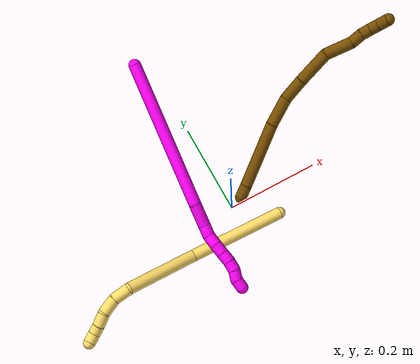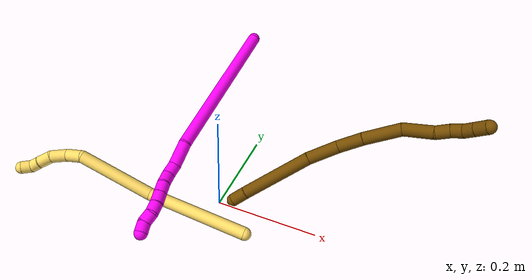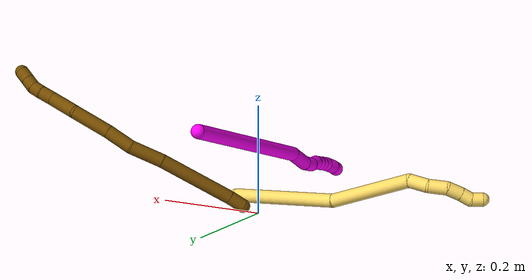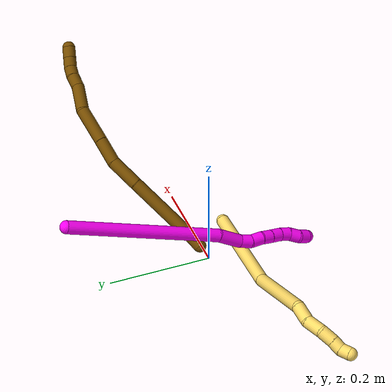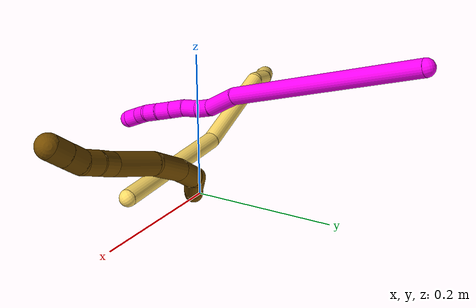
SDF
<sdf version="1.7">
 <world name="default">
  <model name="photoneo_s_sensor">
   <static>1</static>
   <pose>0 0 2 1.57079 1.57079 3.14159</pose>
   <link name="link">
    <inertial><mass>0.1</mass></inertial>
    <sensor name="sensor" type="depth">
     <update_rate>30</update_rate>
     <camera>
      <horizontal_fov>1.22</horizontal_fov>
      <image><width>1920</width><height>1200</height><format>B8G8R8</format></image>
      <clip><near>0.1</near><far>4</far></clip>
      <depth_camera><output>points</output></depth_camera>
     </camera>
     <plugin name="camera_plugin" filename="libgazebo_ros_depth_camera.so">
      <baseline>0.2</baseline>
      <alwaysOn>1</alwaysOn>
      <updateRate>0.0</updateRate>
      <cameraName>camera_ir</cameraName>
      <imageTopicName>/camera/color/image_raw</imageTopicName>
      <cameraInfoTopicName>/camera/color/camera_info</cameraInfoTopicName>
      <depthImageTopicName>/camera/depth/image_raw</depthImageTopicName>
      <depthImageCameraInfoTopicName>/camera/depth/camera_info</depthImageCameraInfoTopicName>
      <pointCloudTopicName>/camera/depth/points</pointCloudTopicName>
      <frameName>fr_optical</frameName>
      <pointCloudCutoff>0.1</pointCloudCutoff>
      <pointCloudCutoffMax>2.0</pointCloudCutoffMax>
      <distortionK1>0</distortionK1>
      <distortionK2>0</distortionK2>
      <distortionK3>0</distortionK3>
      <distortionT1>0</distortionT1>
      <distortionT2>0</distortionT2>
      <CxPrime>0</CxPrime>
      <Cx>0</Cx>
      <Cy>0</Cy>
      <focalLength>0</focalLength>
      <hackBaseline>0</hackBaseline>
     </plugin>
    </sensor>
   </link>
  </model>
  <model name="bin">
   <static>1</static>
   <link name="bottom">
    <collision name="collision-bottom">
     <pose>0 0 -0.01 0 -0 0</pose>
     <geometry><box><size>0.8 0.6 0.02</size></box></geometry>
     <surface>
      <friction><ode><mu>100</mu><mu2>100</mu2></ode></friction>
      <contact><collide_bitmask>65535</collide_bitmask></contact>
     </surface>
    </collision>
   </link>
   <link name="west_wall">
    <collision name="collision-west_wall">
     <pose>-0.41 0 0.1 0 -0 0</pose>
     <geometry><box><size>0.02 0.6 0.2</size></box></geometry>
     <surface>
      <friction><ode><mu>100</mu><mu2>100</mu2></ode></friction>
      <contact><collide_bitmask>65535</collide_bitmask></contact>
     </surface>
    </collision>
   </link>
   <link name="east_wall">
    <collision name="collision-east_wall">
     <pose>0.41 0 0.1 0 -0 0</pose>
     <geometry><box><size>0.02 0.6 0.2</size></box></geometry>
     <surface>
      <friction><ode><mu>100</mu><mu2>100</mu2></ode></friction>
      <contact><collide_bitmask>65535</collide_bitmask></contact>
     </surface>
    </collision>
   </link>
   <link name="south_wall">
    <collision name="collision-south_wall">
     <pose>0 -0.31 0.1 0 -0 0</pose>
     <geometry><box><size>0.8 0.02 0.2</size></box></geometry>
     <surface>
      <friction><ode><mu>100</mu><mu2>100</mu2></ode></friction>
      <contact><collide_bitmask>65535</collide_bitmask></contact>
     </surface>
    </collision>
   </link>
   <link name="north_wall">
    <collision name="collision-north_wall">
     <pose>0 0.31 0.1 0 -0 0</pose>
     <geometry><box><size>0.8 0.02 0.2</size></box></geometry>
     <surface>
      <friction><ode><mu>100</mu><mu2>100</mu2></ode></friction>
      <contact><collide_bitmask>65535</collide_bitmask></contact>
     </surface>
    </collision>
   </link>
  </model>
  <model name="5">
   <static>0</static>
   <link name="5">
    <collision name="collision-cylinder-e_1_1_4">
     <pose>-0.082999 -0.002765 0.060134 0.045954 -0.943303 -0.023442</pose>
     <geometry><cylinder><radius>0.0125</radius><length>0.205063</length></cylinder></geometry>
     <surface>
      <friction><ode><mu>1.16</mu><mu2>1.16</mu2><slip1>0</slip1><slip2>0</slip2></ode></friction>
      <contact><ode><kp>1e+06</kp><kd>1</kd><max_vel>0</max_vel><min_depth>0.001</min_depth></ode></contact>
     </surface>
    </collision>
    <visual name="visual-cylinder-e_1_1_4">
     <pose>-0.082999 -0.002765 0.060134 0.045954 -0.943303 -0.023442</pose>
     <geometry><cylinder><radius>0.0125</radius><length>0.205063</length></cylinder></geometry>
     <material><ambient>1 0.858824 0.4 1</ambient></material>
    </visual>
    <collision name="collision-cylinder-e_2_4_5">
     <pose>-0.221407 -0.027535 0.171129 0.408327 -0.785328 -0.171089</pose>
     <geometry><cylinder><radius>0.0125</radius><length>0.156728</length></cylinder></geometry>
     <surface>
      <friction><ode><mu>1.16</mu><mu2>1.16</mu2><slip1>0</slip1><slip2>0</slip2></ode></friction>
      <contact><ode><kp>1e+06</kp><kd>1</kd><max_vel>0</max_vel><min_depth>0.001</min_depth></ode></contact>
     </surface>
    </collision>
    <visual name="visual-cylinder-e_2_4_5">
     <pose>-0.221407 -0.027535 0.171129 0.408327 -0.785328 -0.171089</pose>
     <geometry><cylinder><radius>0.0125</radius><length>0.156728</length></cylinder></geometry>
     <material><ambient>1 0.858824 0.4 1</ambient></material>
    </visual>
    <collision name="collision-cylinder-e_3_5_6">
     <pose>-0.293358 -0.047727 0.228743 -0.26208 -1.17087 0.174307</pose>
     <geometry><cylinder><radius>0.0125</radius><length>0.035922</length></cylinder></geometry>
     <surface>
      <friction><ode><mu>1.16</mu><mu2>1.16</mu2><slip1>0</slip1><slip2>0</slip2></ode></friction>
      <contact><ode><kp>1e+06</kp><kd>1</kd><max_vel>0</max_vel><min_depth>0.001</min_depth></ode></contact>
     </surface>
    </collision>
    <visual name="visual-cylinder-e_3_5_6">
     <pose>-0.293358 -0.047727 0.228743 -0.26208 -1.17087 0.174307</pose>
     <geometry><cylinder><radius>0.0125</radius><length>0.035922</length></cylinder></geometry>
     <material><ambient>1 0.858824 0.4 1</ambient></material>
    </visual>
    <collision name="collision-cylinder-e_4_6_7">
     <pose>-0.326416 -0.048795 0.238171 0.822444 -1.33714 -0.663491</pose>
     <geometry><cylinder><radius>0.0125</radius><length>0.033951</length></cylinder></geometry>
     <surface>
      <friction><ode><mu>1.16</mu><mu2>1.16</mu2><slip1>0</slip1><slip2>0</slip2></ode></friction>
      <contact><ode><kp>1e+06</kp><kd>1</kd><max_vel>0</max_vel><min_depth>0.001</min_depth></ode></contact>
     </surface>
    </collision>
    <visual name="visual-cylinder-e_4_6_7">
     <pose>-0.326416 -0.048795 0.238171 0.822444 -1.33714 -0.663491</pose>
     <geometry><cylinder><radius>0.0125</radius><length>0.033951</length></cylinder></geometry>
     <material><ambient>1 0.858824 0.4 1</ambient></material>
    </visual>
    <collision name="collision-cylinder-e_5_7_8">
     <pose>-0.356383 -0.051631 0.238719 -3.12077 -1.41394 3.11722</pose>
     <geometry><cylinder><radius>0.0125</radius><length>0.02724</length></cylinder></geometry>
     <surface>
      <friction><ode><mu>1.16</mu><mu2>1.16</mu2><slip1>0</slip1><slip2>0</slip2></ode></friction>
      <contact><ode><kp>1e+06</kp><kd>1</kd><max_vel>0</max_vel><min_depth>0.001</min_depth></ode></contact>
     </surface>
    </collision>
    <visual name="visual-cylinder-e_5_7_8">
     <pose>-0.356383 -0.051631 0.238719 -3.12077 -1.41394 3.11722</pose>
     <geometry><cylinder><radius>0.0125</radius><length>0.02724</length></cylinder></geometry>
     <material><ambient>1 0.858824 0.4 1</ambient></material>
    </visual>
    <collision name="collision-cylinder-e_6_8_9">
     <pose>-0.37991 -0.050213 0.235351 -2.30477 -1.38907 2.16091</pose>
     <geometry><cylinder><radius>0.0125</radius><length>0.020485</length></cylinder></geometry>
     <surface>
      <friction><ode><mu>1.16</mu><mu2>1.16</mu2><slip1>0</slip1><slip2>0</slip2></ode></friction>
      <contact><ode><kp>1e+06</kp><kd>1</kd><max_vel>0</max_vel><min_depth>0.001</min_depth></ode></contact>
     </surface>
    </collision>
    <visual name="visual-cylinder-e_6_8_9">
     <pose>-0.37991 -0.050213 0.235351 -2.30477 -1.38907 2.16091</pose>
     <geometry><cylinder><radius>0.0125</radius><length>0.020485</length></cylinder></geometry>
     <material><ambient>1 0.858824 0.4 1</ambient></material>
    </visual>
    <collision name="collision-cylinder-e_7_9_2">
     <pose>-0.399679 -0.052269 0.234766 1.38237 -1.225 -1.05315</pose>
     <geometry><cylinder><radius>0.0125</radius><length>0.02061</length></cylinder></geometry>
     <surface>
      <friction><ode><mu>1.16</mu><mu2>1.16</mu2><slip1>0</slip1><slip2>0</slip2></ode></friction>
      <contact><ode><kp>1e+06</kp><kd>1</kd><max_vel>0</max_vel><min_depth>0.001</min_depth></ode></contact>
     </surface>
    </collision>
    <visual name="visual-cylinder-e_7_9_2">
     <pose>-0.399679 -0.052269 0.234766 1.38237 -1.225 -1.05315</pose>
     <geometry><cylinder><radius>0.0125</radius><length>0.02061</length></cylinder></geometry>
     <material><ambient>1 0.858824 0.4 1</ambient></material>
    </visual>
    <collision name="collision-sphere-2">
     <pose>-0.409375 -0.0557 0.23542 0 -0 0</pose>
     <geometry><sphere><radius>0.0125</radius></sphere></geometry>
     <surface>
      <friction><ode><mu>1.16</mu><mu2>1.16</mu2><slip1>0</slip1><slip2>0</slip2></ode></friction>
      <contact><ode><kp>1e+06</kp><kd>1</kd><max_vel>0</max_vel><min_depth>0.001</min_depth></ode></contact>
     </surface>
    </collision>
    <visual name="visual-sphere-2">
     <pose>-0.409375 -0.0557 0.23542 0 -0 0</pose>
     <geometry><sphere><radius>0.0125</radius></sphere></geometry>
     <material><ambient>1 0.858824 0.4 1</ambient></material>
    </visual>
    <collision name="collision-sphere-9">
     <pose>-0.389984 -0.048838 0.234111 0 -0 0</pose>
     <geometry><sphere><radius>0.0125</radius></sphere></geometry>
     <surface>
      <friction><ode><mu>1.16</mu><mu2>1.16</mu2><slip1>0</slip1><slip2>0</slip2></ode></friction>
      <contact><ode><kp>1e+06</kp><kd>1</kd><max_vel>0</max_vel><min_depth>0.001</min_depth></ode></contact>
     </surface>
    </collision>
    <visual name="visual-sphere-9">
     <pose>-0.389984 -0.048838 0.234111 0 -0 0</pose>
     <geometry><sphere><radius>0.0125</radius></sphere></geometry>
     <material><ambient>1 0.858824 0.4 1</ambient></material>
    </visual>
    <collision name="collision-sphere-4">
     <pose>-0.165999 -0.005531 0.120269 0 -0 0</pose>
     <geometry><sphere><radius>0.0125</radius></sphere></geometry>
     <surface>
      <friction><ode><mu>1.16</mu><mu2>1.16</mu2><slip1>0</slip1><slip2>0</slip2></ode></friction>
      <contact><ode><kp>1e+06</kp><kd>1</kd><max_vel>0</max_vel><min_depth>0.001</min_depth></ode></contact>
     </surface>
    </collision>
    <visual name="visual-sphere-4">
     <pose>-0.165999 -0.005531 0.120269 0 -0 0</pose>
     <geometry><sphere><radius>0.0125</radius></sphere></geometry>
     <material><ambient>1 0.858824 0.4 1</ambient></material>
    </visual>
    <collision name="collision-sphere-1">
     <geometry><sphere><radius>0.0125</radius></sphere></geometry>
     <surface>
      <friction><ode><mu>1.16</mu><mu2>1.16</mu2><slip1>0</slip1><slip2>0</slip2></ode></friction>
      <contact><ode><kp>1e+06</kp><kd>1</kd><max_vel>0</max_vel><min_depth>0.001</min_depth></ode></contact>
     </surface>
    </collision>
    <visual name="visual-sphere-1">
     <geometry><sphere><radius>0.0125</radius></sphere></geometry>
     <material><ambient>1 0.858824 0.4 1</ambient></material>
    </visual>
    <collision name="collision-sphere-8">
     <pose>-0.369836 -0.051587 0.236591 0 -0 0</pose>
     <geometry><sphere><radius>0.0125</radius></sphere></geometry>
     <surface>
      <friction><ode><mu>1.16</mu><mu2>1.16</mu2><slip1>0</slip1><slip2>0</slip2></ode></friction>
      <contact><ode><kp>1e+06</kp><kd>1</kd><max_vel>0</max_vel><min_depth>0.001</min_depth></ode></contact>
     </surface>
    </collision>
    <visual name="visual-sphere-8">
     <pose>-0.369836 -0.051587 0.236591 0 -0 0</pose>
     <geometry><sphere><radius>0.0125</radius></sphere></geometry>
     <material><ambient>1 0.858824 0.4 1</ambient></material>
    </visual>
    <collision name="collision-sphere-5">
     <pose>-0.276814 -0.049539 0.221988 0 -0 0</pose>
     <geometry><sphere><radius>0.0125</radius></sphere></geometry>
     <surface>
      <friction><ode><mu>1.16</mu><mu2>1.16</mu2><slip1>0</slip1><slip2>0</slip2></ode></friction>
      <contact><ode><kp>1e+06</kp><kd>1</kd><max_vel>0</max_vel><min_depth>0.001</min_depth></ode></contact>
     </surface>
    </collision>
    <visual name="visual-sphere-5">
     <pose>-0.276814 -0.049539 0.221988 0 -0 0</pose>
     <geometry><sphere><radius>0.0125</radius></sphere></geometry>
     <material><ambient>1 0.858824 0.4 1</ambient></material>
    </visual>
    <collision name="collision-sphere-6">
     <pose>-0.309902 -0.045915 0.235497 0 -0 0</pose>
     <geometry><sphere><radius>0.0125</radius></sphere></geometry>
     <surface>
      <friction><ode><mu>1.16</mu><mu2>1.16</mu2><slip1>0</slip1><slip2>0</slip2></ode></friction>
      <contact><ode><kp>1e+06</kp><kd>1</kd><max_vel>0</max_vel><min_depth>0.001</min_depth></ode></contact>
     </surface>
    </collision>
    <visual name="visual-sphere-6">
     <pose>-0.309902 -0.045915 0.235497 0 -0 0</pose>
     <geometry><sphere><radius>0.0125</radius></sphere></geometry>
     <material><ambient>1 0.858824 0.4 1</ambient></material>
    </visual>
    <collision name="collision-sphere-7">
     <pose>-0.342931 -0.051676 0.240846 0 -0 0</pose>
     <geometry><sphere><radius>0.0125</radius></sphere></geometry>
     <surface>
      <friction><ode><mu>1.16</mu><mu2>1.16</mu2><slip1>0</slip1><slip2>0</slip2></ode></friction>
      <contact><ode><kp>1e+06</kp><kd>1</kd><max_vel>0</max_vel><min_depth>0.001</min_depth></ode></contact>
     </surface>
    </collision>
    <visual name="visual-sphere-7">
     <pose>-0.342931 -0.051676 0.240846 0 -0 0</pose>
     <geometry><sphere><radius>0.0125</radius></sphere></geometry>
     <material><ambient>1 0.858824 0.4 1</ambient></material>
    </visual>
    <inertial>
     <pose>-0.198138 -0.023532 0.143235 0 -0 0</pose>
     <mass>0.5</mass>
     <inertia>
      <ixx>0.000575</ixx>
      <ixy>0</ixy>
      <ixz>0</ixz>
      <iyy>0.000999</iyy>
      <iyz>0</iyz>
      <izz>0.000965</izz>
     </inertia>
    </inertial>
   </link>
   <pose>0.08183 -0.061387 0.011484 -0.962421 -0.333241 0.473568</pose>
  </model>
  <model name="10">
   <static>0</static>
   <link name="10">
    <collision name="collision-cylinder-e_1_1_4">
     <pose>0.017964 -0.147745 0.025523 1.39974 0.119246 0.100448</pose>
     <geometry><cylinder><radius>0.0125</radius><length>0.302011</length></cylinder></geometry>
     <surface>
      <friction><ode><mu>1.16</mu><mu2>1.16</mu2><slip1>0</slip1><slip2>0</slip2></ode></friction>
      <contact><ode><kp>1e+06</kp><kd>1</kd><max_vel>0</max_vel><min_depth>0.001</min_depth></ode></contact>
     </surface>
    </collision>
    <visual name="visual-cylinder-e_1_1_4">
     <pose>0.017964 -0.147745 0.025523 1.39974 0.119246 0.100448</pose>
     <geometry><cylinder><radius>0.0125</radius><length>0.302011</length></cylinder></geometry>
     <material><ambient>1 0 0.964706 1</ambient></material>
    </visual>
    <collision name="collision-cylinder-e_2_4_5">
     <pose>0.038271 -0.319338 0.049462 1.63708 0.097716 0.104405</pose>
     <geometry><cylinder><radius>0.0125</radius><length>0.048032</length></cylinder></geometry>
     <surface>
      <friction><ode><mu>1.16</mu><mu2>1.16</mu2><slip1>0</slip1><slip2>0</slip2></ode></friction>
      <contact><ode><kp>1e+06</kp><kd>1</kd><max_vel>0</max_vel><min_depth>0.001</min_depth></ode></contact>
     </surface>
    </collision>
    <visual name="visual-cylinder-e_2_4_5">
     <pose>0.038271 -0.319338 0.049462 1.63708 0.097716 0.104405</pose>
     <geometry><cylinder><radius>0.0125</radius><length>0.048032</length></cylinder></geometry>
     <material><ambient>1 0 0.964706 1</ambient></material>
    </visual>
    <collision name="collision-cylinder-e_3_5_6">
     <pose>0.04209 -0.35463 0.050088 1.38014 0.125982 0.104036</pose>
     <geometry><cylinder><radius>0.0125</radius><length>0.023495</length></cylinder></geometry>
     <surface>
      <friction><ode><mu>1.16</mu><mu2>1.16</mu2><slip1>0</slip1><slip2>0</slip2></ode></friction>
      <contact><ode><kp>1e+06</kp><kd>1</kd><max_vel>0</max_vel><min_depth>0.001</min_depth></ode></contact>
     </surface>
    </collision>
    <visual name="visual-cylinder-e_3_5_6">
     <pose>0.04209 -0.35463 0.050088 1.38014 0.125982 0.104036</pose>
     <geometry><cylinder><radius>0.0125</radius><length>0.023495</length></cylinder></geometry>
     <material><ambient>1 0 0.964706 1</ambient></material>
    </visual>
    <collision name="collision-cylinder-e_4_6_7">
     <pose>0.047841 -0.37599 0.05633 1.18449 0.37987 0.257271</pose>
     <geometry><cylinder><radius>0.0125</radius><length>0.023055</length></cylinder></geometry>
     <surface>
      <friction><ode><mu>1.16</mu><mu2>1.16</mu2><slip1>0</slip1><slip2>0</slip2></ode></friction>
      <contact><ode><kp>1e+06</kp><kd>1</kd><max_vel>0</max_vel><min_depth>0.001</min_depth></ode></contact>
     </surface>
    </collision>
    <visual name="visual-cylinder-e_4_6_7">
     <pose>0.047841 -0.37599 0.05633 1.18449 0.37987 0.257271</pose>
     <geometry><cylinder><radius>0.0125</radius><length>0.023055</length></cylinder></geometry>
     <material><ambient>1 0 0.964706 1</ambient></material>
    </visual>
    <collision name="collision-cylinder-e_5_7_8">
     <pose>0.055959 -0.395555 0.061956 1.40716 0.374514 0.318786</pose>
     <geometry><cylinder><radius>0.0125</radius><length>0.021015</length></cylinder></geometry>
     <surface>
      <friction><ode><mu>1.16</mu><mu2>1.16</mu2><slip1>0</slip1><slip2>0</slip2></ode></friction>
      <contact><ode><kp>1e+06</kp><kd>1</kd><max_vel>0</max_vel><min_depth>0.001</min_depth></ode></contact>
     </surface>
    </collision>
    <visual name="visual-cylinder-e_5_7_8">
     <pose>0.055959 -0.395555 0.061956 1.40716 0.374514 0.318786</pose>
     <geometry><cylinder><radius>0.0125</radius><length>0.021015</length></cylinder></geometry>
     <material><ambient>1 0 0.964706 1</ambient></material>
    </visual>
    <collision name="collision-cylinder-e_6_8_9">
     <pose>0.064089 -0.415012 0.065301 1.39405 0.406256 0.341522</pose>
     <geometry><cylinder><radius>0.0125</radius><length>0.021693</length></cylinder></geometry>
     <surface>
      <friction><ode><mu>1.16</mu><mu2>1.16</mu2><slip1>0</slip1><slip2>0</slip2></ode></friction>
      <contact><ode><kp>1e+06</kp><kd>1</kd><max_vel>0</max_vel><min_depth>0.001</min_depth></ode></contact>
     </surface>
    </collision>
    <visual name="visual-cylinder-e_6_8_9">
     <pose>0.064089 -0.415012 0.065301 1.39405 0.406256 0.341522</pose>
     <geometry><cylinder><radius>0.0125</radius><length>0.021693</length></cylinder></geometry>
     <material><ambient>1 0 0.964706 1</ambient></material>
    </visual>
    <collision name="collision-cylinder-e_7_9_10">
     <pose>0.070817 -0.434379 0.068838 1.38623 0.24607 0.204702</pose>
     <geometry><cylinder><radius>0.0125</radius><length>0.020052</length></cylinder></geometry>
     <surface>
      <friction><ode><mu>1.16</mu><mu2>1.16</mu2><slip1>0</slip1><slip2>0</slip2></ode></friction>
      <contact><ode><kp>1e+06</kp><kd>1</kd><max_vel>0</max_vel><min_depth>0.001</min_depth></ode></contact>
     </surface>
    </collision>
    <visual name="visual-cylinder-e_7_9_10">
     <pose>0.070817 -0.434379 0.068838 1.38623 0.24607 0.204702</pose>
     <geometry><cylinder><radius>0.0125</radius><length>0.020052</length></cylinder></geometry>
     <material><ambient>1 0 0.964706 1</ambient></material>
    </visual>
    <collision name="collision-cylinder-e_8_10_11">
     <pose>0.072596 -0.45418 0.071567 1.47878 -0.064476 -0.058804</pose>
     <geometry><cylinder><radius>0.0125</radius><length>0.020616</length></cylinder></geometry>
     <surface>
      <friction><ode><mu>1.16</mu><mu2>1.16</mu2><slip1>0</slip1><slip2>0</slip2></ode></friction>
      <contact><ode><kp>1e+06</kp><kd>1</kd><max_vel>0</max_vel><min_depth>0.001</min_depth></ode></contact>
     </surface>
    </collision>
    <visual name="visual-cylinder-e_8_10_11">
     <pose>0.072596 -0.45418 0.071567 1.47878 -0.064476 -0.058804</pose>
     <geometry><cylinder><radius>0.0125</radius><length>0.020616</length></cylinder></geometry>
     <material><ambient>1 0 0.964706 1</ambient></material>
    </visual>
    <collision name="collision-cylinder-e_9_11_2">
     <pose>0.075094 -0.473927 0.072598 1.5618 0.321271 0.318442</pose>
     <geometry><cylinder><radius>0.0125</radius><length>0.020033</length></cylinder></geometry>
     <surface>
      <friction><ode><mu>1.16</mu><mu2>1.16</mu2><slip1>0</slip1><slip2>0</slip2></ode></friction>
      <contact><ode><kp>1e+06</kp><kd>1</kd><max_vel>0</max_vel><min_depth>0.001</min_depth></ode></contact>
     </surface>
    </collision>
    <visual name="visual-cylinder-e_9_11_2">
     <pose>0.075094 -0.473927 0.072598 1.5618 0.321271 0.318442</pose>
     <geometry><cylinder><radius>0.0125</radius><length>0.020033</length></cylinder></geometry>
     <material><ambient>1 0 0.964706 1</ambient></material>
    </visual>
    <collision name="collision-sphere-2">
     <pose>0.078257 -0.483431 0.072684 0 -0 0</pose>
     <geometry><sphere><radius>0.0125</radius></sphere></geometry>
     <surface>
      <friction><ode><mu>1.16</mu><mu2>1.16</mu2><slip1>0</slip1><slip2>0</slip2></ode></friction>
      <contact><ode><kp>1e+06</kp><kd>1</kd><max_vel>0</max_vel><min_depth>0.001</min_depth></ode></contact>
     </surface>
    </collision>
    <visual name="visual-sphere-2">
     <pose>0.078257 -0.483431 0.072684 0 -0 0</pose>
     <geometry><sphere><radius>0.0125</radius></sphere></geometry>
     <material><ambient>1 0 0.964706 1</ambient></material>
    </visual>
    <collision name="collision-sphere-11">
     <pose>0.071931 -0.464423 0.072513 0 -0 0</pose>
     <geometry><sphere><radius>0.0125</radius></sphere></geometry>
     <surface>
      <friction><ode><mu>1.16</mu><mu2>1.16</mu2><slip1>0</slip1><slip2>0</slip2></ode></friction>
      <contact><ode><kp>1e+06</kp><kd>1</kd><max_vel>0</max_vel><min_depth>0.001</min_depth></ode></contact>
     </surface>
    </collision>
    <visual name="visual-sphere-11">
     <pose>0.071931 -0.464423 0.072513 0 -0 0</pose>
     <geometry><sphere><radius>0.0125</radius></sphere></geometry>
     <material><ambient>1 0 0.964706 1</ambient></material>
    </visual>
    <collision name="collision-sphere-10">
     <pose>0.07326 -0.443937 0.070622 0 -0 0</pose>
     <geometry><sphere><radius>0.0125</radius></sphere></geometry>
     <surface>
      <friction><ode><mu>1.16</mu><mu2>1.16</mu2><slip1>0</slip1><slip2>0</slip2></ode></friction>
      <contact><ode><kp>1e+06</kp><kd>1</kd><max_vel>0</max_vel><min_depth>0.001</min_depth></ode></contact>
     </surface>
    </collision>
    <visual name="visual-sphere-10">
     <pose>0.07326 -0.443937 0.070622 0 -0 0</pose>
     <geometry><sphere><radius>0.0125</radius></sphere></geometry>
     <material><ambient>1 0 0.964706 1</ambient></material>
    </visual>
    <collision name="collision-sphere-9">
     <pose>0.068375 -0.42482 0.067053 0 -0 0</pose>
     <geometry><sphere><radius>0.0125</radius></sphere></geometry>
     <surface>
      <friction><ode><mu>1.16</mu><mu2>1.16</mu2><slip1>0</slip1><slip2>0</slip2></ode></friction>
      <contact><ode><kp>1e+06</kp><kd>1</kd><max_vel>0</max_vel><min_depth>0.001</min_depth></ode></contact>
     </surface>
    </collision>
    <visual name="visual-sphere-9">
     <pose>0.068375 -0.42482 0.067053 0 -0 0</pose>
     <geometry><sphere><radius>0.0125</radius></sphere></geometry>
     <material><ambient>1 0 0.964706 1</ambient></material>
    </visual>
    <collision name="collision-sphere-4">
     <pose>0.035928 -0.295489 0.051045 0 -0 0</pose>
     <geometry><sphere><radius>0.0125</radius></sphere></geometry>
     <surface>
      <friction><ode><mu>1.16</mu><mu2>1.16</mu2><slip1>0</slip1><slip2>0</slip2></ode></friction>
      <contact><ode><kp>1e+06</kp><kd>1</kd><max_vel>0</max_vel><min_depth>0.001</min_depth></ode></contact>
     </surface>
    </collision>
    <visual name="visual-sphere-4">
     <pose>0.035928 -0.295489 0.051045 0 -0 0</pose>
     <geometry><sphere><radius>0.0125</radius></sphere></geometry>
     <material><ambient>1 0 0.964706 1</ambient></material>
    </visual>
    <collision name="collision-sphere-1">
     <geometry><sphere><radius>0.0125</radius></sphere></geometry>
     <surface>
      <friction><ode><mu>1.16</mu><mu2>1.16</mu2><slip1>0</slip1><slip2>0</slip2></ode></friction>
      <contact><ode><kp>1e+06</kp><kd>1</kd><max_vel>0</max_vel><min_depth>0.001</min_depth></ode></contact>
     </surface>
    </collision>
    <visual name="visual-sphere-1">
     <geometry><sphere><radius>0.0125</radius></sphere></geometry>
     <material><ambient>1 0 0.964706 1</ambient></material>
    </visual>
    <collision name="collision-sphere-8">
     <pose>0.059803 -0.405203 0.063549 0 -0 0</pose>
     <geometry><sphere><radius>0.0125</radius></sphere></geometry>
     <surface>
      <friction><ode><mu>1.16</mu><mu2>1.16</mu2><slip1>0</slip1><slip2>0</slip2></ode></friction>
      <contact><ode><kp>1e+06</kp><kd>1</kd><max_vel>0</max_vel><min_depth>0.001</min_depth></ode></contact>
     </surface>
    </collision>
    <visual name="visual-sphere-8">
     <pose>0.059803 -0.405203 0.063549 0 -0 0</pose>
     <geometry><sphere><radius>0.0125</radius></sphere></geometry>
     <material><ambient>1 0 0.964706 1</ambient></material>
    </visual>
    <collision name="collision-sphere-5">
     <pose>0.040614 -0.343187 0.047879 0 -0 0</pose>
     <geometry><sphere><radius>0.0125</radius></sphere></geometry>
     <surface>
      <friction><ode><mu>1.16</mu><mu2>1.16</mu2><slip1>0</slip1><slip2>0</slip2></ode></friction>
      <contact><ode><kp>1e+06</kp><kd>1</kd><max_vel>0</max_vel><min_depth>0.001</min_depth></ode></contact>
     </surface>
    </collision>
    <visual name="visual-sphere-5">
     <pose>0.040614 -0.343187 0.047879 0 -0 0</pose>
     <geometry><sphere><radius>0.0125</radius></sphere></geometry>
     <material><ambient>1 0 0.964706 1</ambient></material>
    </visual>
    <collision name="collision-sphere-6">
     <pose>0.043566 -0.366073 0.052296 0 -0 0</pose>
     <geometry><sphere><radius>0.0125</radius></sphere></geometry>
     <surface>
      <friction><ode><mu>1.16</mu><mu2>1.16</mu2><slip1>0</slip1><slip2>0</slip2></ode></friction>
      <contact><ode><kp>1e+06</kp><kd>1</kd><max_vel>0</max_vel><min_depth>0.001</min_depth></ode></contact>
     </surface>
    </collision>
    <visual name="visual-sphere-6">
     <pose>0.043566 -0.366073 0.052296 0 -0 0</pose>
     <geometry><sphere><radius>0.0125</radius></sphere></geometry>
     <material><ambient>1 0 0.964706 1</ambient></material>
    </visual>
    <collision name="collision-sphere-7">
     <pose>0.052115 -0.385906 0.060363 0 -0 0</pose>
     <geometry><sphere><radius>0.0125</radius></sphere></geometry>
     <surface>
      <friction><ode><mu>1.16</mu><mu2>1.16</mu2><slip1>0</slip1><slip2>0</slip2></ode></friction>
      <contact><ode><kp>1e+06</kp><kd>1</kd><max_vel>0</max_vel><min_depth>0.001</min_depth></ode></contact>
     </surface>
    </collision>
    <visual name="visual-sphere-7">
     <pose>0.052115 -0.385906 0.060363 0 -0 0</pose>
     <geometry><sphere><radius>0.0125</radius></sphere></geometry>
     <material><ambient>1 0 0.964706 1</ambient></material>
    </visual>
    <inertial>
     <pose>0.032685 -0.243684 0.039176 0 -0 0</pose>
     <mass>0.5</mass>
     <inertia>
      <ixx>0.00254</ixx>
      <ixy>0</ixy>
      <ixz>0</ixz>
      <iyy>0.000616</iyy>
      <iyz>0</iyz>
      <izz>0.002007</izz>
     </inertia>
    </inertial>
   </link>
   <pose>-0.055472 0.298062 0.212413 0.499154 -0.136743 -0.245146</pose>
  </model>
  <model name="12">
   <static>0</static>
   <link name="12">
    <collision name="collision-cylinder-e_1_1_4">
     <pose>0.002331 0.002732 0.014597 -0.185034 0.155686 -0.014474</pose>
     <geometry><cylinder><radius>0.0125</radius><length>0.030064</length></cylinder></geometry>
     <surface>
      <friction><ode><mu>1.16</mu><mu2>1.16</mu2><slip1>0</slip1><slip2>0</slip2></ode></friction>
      <contact><ode><kp>1e+06</kp><kd>1</kd><max_vel>0</max_vel><min_depth>0.001</min_depth></ode></contact>
     </surface>
    </collision>
    <visual name="visual-cylinder-e_1_1_4">
     <pose>0.002331 0.002732 0.014597 -0.185034 0.155686 -0.014474</pose>
     <geometry><cylinder><radius>0.0125</radius><length>0.030064</length></cylinder></geometry>
     <material><ambient>0.466667 0.301961 0 1</ambient></material>
    </visual>
    <collision name="collision-cylinder-e_2_4_5">
     <pose>0.01156 0.015679 0.098636 -0.146045 0.097967 -0.007172</pose>
     <geometry><cylinder><radius>0.0125</radius><length>0.141055</length></cylinder></geometry>
     <surface>
      <friction><ode><mu>1.16</mu><mu2>1.16</mu2><slip1>0</slip1><slip2>0</slip2></ode></friction>
      <contact><ode><kp>1e+06</kp><kd>1</kd><max_vel>0</max_vel><min_depth>0.001</min_depth></ode></contact>
     </surface>
    </collision>
    <visual name="visual-cylinder-e_2_4_5">
     <pose>0.01156 0.015679 0.098636 -0.146045 0.097967 -0.007172</pose>
     <geometry><cylinder><radius>0.0125</radius><length>0.141055</length></cylinder></geometry>
     <material><ambient>0.466667 0.301961 0 1</ambient></material>
    </visual>
    <collision name="collision-cylinder-e_3_5_6">
     <pose>0.018029 0.032265 0.198156 -0.208765 -0.013957 0.001462</pose>
     <geometry><cylinder><radius>0.0125</radius><length>0.061498</length></cylinder></geometry>
     <surface>
      <friction><ode><mu>1.16</mu><mu2>1.16</mu2><slip1>0</slip1><slip2>0</slip2></ode></friction>
      <contact><ode><kp>1e+06</kp><kd>1</kd><max_vel>0</max_vel><min_depth>0.001</min_depth></ode></contact>
     </surface>
    </collision>
    <visual name="visual-cylinder-e_3_5_6">
     <pose>0.018029 0.032265 0.198156 -0.208765 -0.013957 0.001462</pose>
     <geometry><cylinder><radius>0.0125</radius><length>0.061498</length></cylinder></geometry>
     <material><ambient>0.466667 0.301961 0 1</ambient></material>
    </visual>
    <collision name="collision-cylinder-e_4_6_7">
     <pose>0.019398 0.049708 0.250467 -0.462029 0.07225 -0.017001</pose>
     <geometry><cylinder><radius>0.0125</radius><length>0.049801</length></cylinder></geometry>
     <surface>
      <friction><ode><mu>1.16</mu><mu2>1.16</mu2><slip1>0</slip1><slip2>0</slip2></ode></friction>
      <contact><ode><kp>1e+06</kp><kd>1</kd><max_vel>0</max_vel><min_depth>0.001</min_depth></ode></contact>
     </surface>
    </collision>
    <visual name="visual-cylinder-e_4_6_7">
     <pose>0.019398 0.049708 0.250467 -0.462029 0.07225 -0.017001</pose>
     <geometry><cylinder><radius>0.0125</radius><length>0.049801</length></cylinder></geometry>
     <material><ambient>0.466667 0.301961 0 1</ambient></material>
    </visual>
    <collision name="collision-cylinder-e_5_7_8">
     <pose>0.021034 0.077437 0.304926 -0.477072 -0.004431 0.001078</pose>
     <geometry><cylinder><radius>0.0125</radius><length>0.072556</length></cylinder></geometry>
     <surface>
      <friction><ode><mu>1.16</mu><mu2>1.16</mu2><slip1>0</slip1><slip2>0</slip2></ode></friction>
      <contact><ode><kp>1e+06</kp><kd>1</kd><max_vel>0</max_vel><min_depth>0.001</min_depth></ode></contact>
     </surface>
    </collision>
    <visual name="visual-cylinder-e_5_7_8">
     <pose>0.021034 0.077437 0.304926 -0.477072 -0.004431 0.001078</pose>
     <geometry><cylinder><radius>0.0125</radius><length>0.072556</length></cylinder></geometry>
     <material><ambient>0.466667 0.301961 0 1</ambient></material>
    </visual>
    <collision name="collision-cylinder-e_6_8_9">
     <pose>0.016399 0.115491 0.35567 -0.857371 -0.156821 0.071788</pose>
     <geometry><cylinder><radius>0.0125</radius><length>0.057295</length></cylinder></geometry>
     <surface>
      <friction><ode><mu>1.16</mu><mu2>1.16</mu2><slip1>0</slip1><slip2>0</slip2></ode></friction>
      <contact><ode><kp>1e+06</kp><kd>1</kd><max_vel>0</max_vel><min_depth>0.001</min_depth></ode></contact>
     </surface>
    </collision>
    <visual name="visual-cylinder-e_6_8_9">
     <pose>0.016399 0.115491 0.35567 -0.857371 -0.156821 0.071788</pose>
     <geometry><cylinder><radius>0.0125</radius><length>0.057295</length></cylinder></geometry>
     <material><ambient>0.466667 0.301961 0 1</ambient></material>
    </visual>
    <collision name="collision-cylinder-e_7_9_10">
     <pose>0.011074 0.143891 0.384672 -0.588999 -0.067398 0.02045</pose>
     <geometry><cylinder><radius>0.0125</radius><length>0.025275</length></cylinder></geometry>
     <surface>
      <friction><ode><mu>1.16</mu><mu2>1.16</mu2><slip1>0</slip1><slip2>0</slip2></ode></friction>
      <contact><ode><kp>1e+06</kp><kd>1</kd><max_vel>0</max_vel><min_depth>0.001</min_depth></ode></contact>
     </surface>
    </collision>
    <visual name="visual-cylinder-e_7_9_10">
     <pose>0.011074 0.143891 0.384672 -0.588999 -0.067398 0.02045</pose>
     <geometry><cylinder><radius>0.0125</radius><length>0.025275</length></cylinder></geometry>
     <material><ambient>0.466667 0.301961 0 1</ambient></material>
    </visual>
    <collision name="collision-cylinder-e_8_10_11">
     <pose>0.009128 0.158054 0.402455 -0.775762 -0.106719 0.043638</pose>
     <geometry><cylinder><radius>0.0125</radius><length>0.020564</length></cylinder></geometry>
     <surface>
      <friction><ode><mu>1.16</mu><mu2>1.16</mu2><slip1>0</slip1><slip2>0</slip2></ode></friction>
      <contact><ode><kp>1e+06</kp><kd>1</kd><max_vel>0</max_vel><min_depth>0.001</min_depth></ode></contact>
     </surface>
    </collision>
    <visual name="visual-cylinder-e_8_10_11">
     <pose>0.009128 0.158054 0.402455 -0.775762 -0.106719 0.043638</pose>
     <geometry><cylinder><radius>0.0125</radius><length>0.020564</length></cylinder></geometry>
     <material><ambient>0.466667 0.301961 0 1</ambient></material>
    </visual>
    <collision name="collision-cylinder-e_9_11_12">
     <pose>0.009919 0.172876 0.416112 -0.878139 0.187188 -0.088112</pose>
     <geometry><cylinder><radius>0.0125</radius><length>0.02027</length></cylinder></geometry>
     <surface>
      <friction><ode><mu>1.16</mu><mu2>1.16</mu2><slip1>0</slip1><slip2>0</slip2></ode></friction>
      <contact><ode><kp>1e+06</kp><kd>1</kd><max_vel>0</max_vel><min_depth>0.001</min_depth></ode></contact>
     </surface>
    </collision>
    <visual name="visual-cylinder-e_9_11_12">
     <pose>0.009919 0.172876 0.416112 -0.878139 0.187188 -0.088112</pose>
     <geometry><cylinder><radius>0.0125</radius><length>0.02027</length></cylinder></geometry>
     <material><ambient>0.466667 0.301961 0 1</ambient></material>
    </visual>
    <collision name="collision-cylinder-e_10_12_2">
     <pose>0.013895 0.188704 0.429241 -0.878495 0.194555 -0.091639</pose>
     <geometry><cylinder><radius>0.0125</radius><length>0.021621</length></cylinder></geometry>
     <surface>
      <friction><ode><mu>1.16</mu><mu2>1.16</mu2><slip1>0</slip1><slip2>0</slip2></ode></friction>
      <contact><ode><kp>1e+06</kp><kd>1</kd><max_vel>0</max_vel><min_depth>0.001</min_depth></ode></contact>
     </surface>
    </collision>
    <visual name="visual-cylinder-e_10_12_2">
     <pose>0.013895 0.188704 0.429241 -0.878495 0.194555 -0.091639</pose>
     <geometry><cylinder><radius>0.0125</radius><length>0.021621</length></cylinder></geometry>
     <material><ambient>0.466667 0.301961 0 1</ambient></material>
    </visual>
    <collision name="collision-sphere-2">
     <pose>0.015985 0.196869 0.436012 0 -0 0</pose>
     <geometry><sphere><radius>0.0125</radius></sphere></geometry>
     <surface>
      <friction><ode><mu>1.16</mu><mu2>1.16</mu2><slip1>0</slip1><slip2>0</slip2></ode></friction>
      <contact><ode><kp>1e+06</kp><kd>1</kd><max_vel>0</max_vel><min_depth>0.001</min_depth></ode></contact>
     </surface>
    </collision>
    <visual name="visual-sphere-2">
     <pose>0.015985 0.196869 0.436012 0 -0 0</pose>
     <geometry><sphere><radius>0.0125</radius></sphere></geometry>
     <material><ambient>0.466667 0.301961 0 1</ambient></material>
    </visual>
    <collision name="collision-sphere-12">
     <pose>0.011805 0.180539 0.422471 0 -0 0</pose>
     <geometry><sphere><radius>0.0125</radius></sphere></geometry>
     <surface>
      <friction><ode><mu>1.16</mu><mu2>1.16</mu2><slip1>0</slip1><slip2>0</slip2></ode></friction>
      <contact><ode><kp>1e+06</kp><kd>1</kd><max_vel>0</max_vel><min_depth>0.001</min_depth></ode></contact>
     </surface>
    </collision>
    <visual name="visual-sphere-12">
     <pose>0.011805 0.180539 0.422471 0 -0 0</pose>
     <geometry><sphere><radius>0.0125</radius></sphere></geometry>
     <material><ambient>0.466667 0.301961 0 1</ambient></material>
    </visual>
    <collision name="collision-sphere-11">
     <pose>0.008033 0.165213 0.409753 0 -0 0</pose>
     <geometry><sphere><radius>0.0125</radius></sphere></geometry>
     <surface>
      <friction><ode><mu>1.16</mu><mu2>1.16</mu2><slip1>0</slip1><slip2>0</slip2></ode></friction>
      <contact><ode><kp>1e+06</kp><kd>1</kd><max_vel>0</max_vel><min_depth>0.001</min_depth></ode></contact>
     </surface>
    </collision>
    <visual name="visual-sphere-11">
     <pose>0.008033 0.165213 0.409753 0 -0 0</pose>
     <geometry><sphere><radius>0.0125</radius></sphere></geometry>
     <material><ambient>0.466667 0.301961 0 1</ambient></material>
    </visual>
    <collision name="collision-sphere-10">
     <pose>0.010223 0.150895 0.395156 0 -0 0</pose>
     <geometry><sphere><radius>0.0125</radius></sphere></geometry>
     <surface>
      <friction><ode><mu>1.16</mu><mu2>1.16</mu2><slip1>0</slip1><slip2>0</slip2></ode></friction>
      <contact><ode><kp>1e+06</kp><kd>1</kd><max_vel>0</max_vel><min_depth>0.001</min_depth></ode></contact>
     </surface>
    </collision>
    <visual name="visual-sphere-10">
     <pose>0.010223 0.150895 0.395156 0 -0 0</pose>
     <geometry><sphere><radius>0.0125</radius></sphere></geometry>
     <material><ambient>0.466667 0.301961 0 1</ambient></material>
    </visual>
    <collision name="collision-sphere-9">
     <pose>0.011925 0.136886 0.374188 0 -0 0</pose>
     <geometry><sphere><radius>0.0125</radius></sphere></geometry>
     <surface>
      <friction><ode><mu>1.16</mu><mu2>1.16</mu2><slip1>0</slip1><slip2>0</slip2></ode></friction>
      <contact><ode><kp>1e+06</kp><kd>1</kd><max_vel>0</max_vel><min_depth>0.001</min_depth></ode></contact>
     </surface>
    </collision>
    <visual name="visual-sphere-9">
     <pose>0.011925 0.136886 0.374188 0 -0 0</pose>
     <geometry><sphere><radius>0.0125</radius></sphere></geometry>
     <material><ambient>0.466667 0.301961 0 1</ambient></material>
    </visual>
    <collision name="collision-sphere-4">
     <pose>0.004662 0.005464 0.029193 0 -0 0</pose>
     <geometry><sphere><radius>0.0125</radius></sphere></geometry>
     <surface>
      <friction><ode><mu>1.16</mu><mu2>1.16</mu2><slip1>0</slip1><slip2>0</slip2></ode></friction>
      <contact><ode><kp>1e+06</kp><kd>1</kd><max_vel>0</max_vel><min_depth>0.001</min_depth></ode></contact>
     </surface>
    </collision>
    <visual name="visual-sphere-4">
     <pose>0.004662 0.005464 0.029193 0 -0 0</pose>
     <geometry><sphere><radius>0.0125</radius></sphere></geometry>
     <material><ambient>0.466667 0.301961 0 1</ambient></material>
    </visual>
    <collision name="collision-sphere-1">
     <geometry><sphere><radius>0.0125</radius></sphere></geometry>
     <surface>
      <friction><ode><mu>1.16</mu><mu2>1.16</mu2><slip1>0</slip1><slip2>0</slip2></ode></friction>
      <contact><ode><kp>1e+06</kp><kd>1</kd><max_vel>0</max_vel><min_depth>0.001</min_depth></ode></contact>
     </surface>
    </collision>
    <visual name="visual-sphere-1">
     <geometry><sphere><radius>0.0125</radius></sphere></geometry>
     <material><ambient>0.466667 0.301961 0 1</ambient></material>
    </visual>
    <collision name="collision-sphere-8">
     <pose>0.020874 0.094095 0.337153 0 -0 0</pose>
     <geometry><sphere><radius>0.0125</radius></sphere></geometry>
     <surface>
      <friction><ode><mu>1.16</mu><mu2>1.16</mu2><slip1>0</slip1><slip2>0</slip2></ode></friction>
      <contact><ode><kp>1e+06</kp><kd>1</kd><max_vel>0</max_vel><min_depth>0.001</min_depth></ode></contact>
     </surface>
    </collision>
    <visual name="visual-sphere-8">
     <pose>0.020874 0.094095 0.337153 0 -0 0</pose>
     <geometry><sphere><radius>0.0125</radius></sphere></geometry>
     <material><ambient>0.466667 0.301961 0 1</ambient></material>
    </visual>
    <collision name="collision-sphere-5">
     <pose>0.018458 0.025893 0.168078 0 -0 0</pose>
     <geometry><sphere><radius>0.0125</radius></sphere></geometry>
     <surface>
      <friction><ode><mu>1.16</mu><mu2>1.16</mu2><slip1>0</slip1><slip2>0</slip2></ode></friction>
      <contact><ode><kp>1e+06</kp><kd>1</kd><max_vel>0</max_vel><min_depth>0.001</min_depth></ode></contact>
     </surface>
    </collision>
    <visual name="visual-sphere-5">
     <pose>0.018458 0.025893 0.168078 0 -0 0</pose>
     <geometry><sphere><radius>0.0125</radius></sphere></geometry>
     <material><ambient>0.466667 0.301961 0 1</ambient></material>
    </visual>
    <collision name="collision-sphere-6">
     <pose>0.0176 0.038638 0.228235 0 -0 0</pose>
     <geometry><sphere><radius>0.0125</radius></sphere></geometry>
     <surface>
      <friction><ode><mu>1.16</mu><mu2>1.16</mu2><slip1>0</slip1><slip2>0</slip2></ode></friction>
      <contact><ode><kp>1e+06</kp><kd>1</kd><max_vel>0</max_vel><min_depth>0.001</min_depth></ode></contact>
     </surface>
    </collision>
    <visual name="visual-sphere-6">
     <pose>0.0176 0.038638 0.228235 0 -0 0</pose>
     <geometry><sphere><radius>0.0125</radius></sphere></geometry>
     <material><ambient>0.466667 0.301961 0 1</ambient></material>
    </visual>
    <collision name="collision-sphere-7">
     <pose>0.021195 0.060779 0.272698 0 -0 0</pose>
     <geometry><sphere><radius>0.0125</radius></sphere></geometry>
     <surface>
      <friction><ode><mu>1.16</mu><mu2>1.16</mu2><slip1>0</slip1><slip2>0</slip2></ode></friction>
      <contact><ode><kp>1e+06</kp><kd>1</kd><max_vel>0</max_vel><min_depth>0.001</min_depth></ode></contact>
     </surface>
    </collision>
    <visual name="visual-sphere-7">
     <pose>0.021195 0.060779 0.272698 0 -0 0</pose>
     <geometry><sphere><radius>0.0125</radius></sphere></geometry>
     <material><ambient>0.466667 0.301961 0 1</ambient></material>
    </visual>
    <inertial>
     <pose>0.014421 0.066921 0.234456 0 -0 0</pose>
     <mass>0.5</mass>
     <inertia>
      <ixx>0.000335</ixx>
      <ixy>0</ixy>
      <ixz>0</ixz>
      <iyy>0.000335</iyy>
      <iyz>0</iyz>
      <izz>-6.7e-05</izz>
     </inertia>
    </inertial>
   </link>
   <pose>0.026789 0.008003 0.012209 0.579879 -1.09503 -3.02791</pose>
  </model>
 </world>
</sdf>
